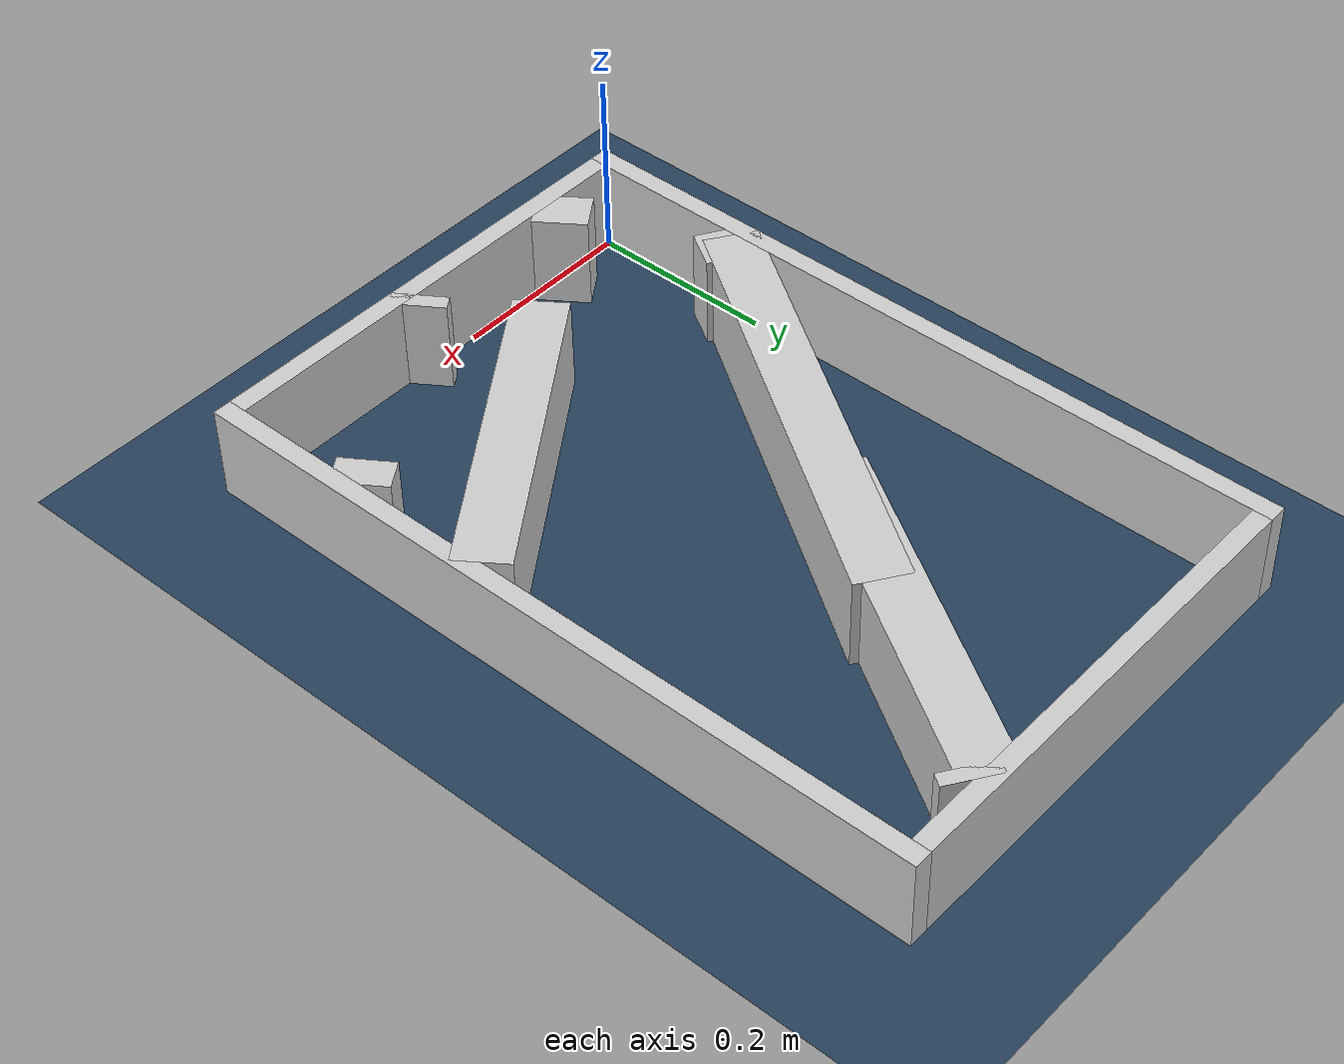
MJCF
<?xml version="1.0" ?>
<mujoco model="generated_real_template">
  <compiler angle="degree"/>
  <option timestep="0.002" integrator="implicitfast" iterations="100" cone="elliptic"/>
  <default>
    <geom density="1"/>
  </default>
  <asset>
    <texture builtin="gradient" height="3072" rgb1="0.3 0.5 0.7" rgb2="0 0 0" type="skybox" width="512"/>
    <texture builtin="checker" height="300" mark="edge" markrgb="0.8 0.8 0.8" name="groundplane" rgb1="0.2 0.3 0.4" rgb2="0.1 0.2 0.3" type="2d" width="300"/>
    <material name="groundplane" reflectance="0.2" texrepeat="5 5" texture="groundplane" texuniform="true"/>
  </asset>
  <worldbody>
    <light dir="0 0 -1" directional="true" pos="0 0 1.5"/>
    <geom name="floor" type="plane" condim="4" friction="0.5 0.005 0.001" material="groundplane" size="0 0 0.05"/>
    <body name="walls">
      <geom name="wall_boundary_left" type="box" condim="4" friction="1.0 0.005 0.0001" rgba="0.8 0.8 0.8 1" pos="-0.010000 0.387500 0.050000" euler="0 0 0.000000" size="0.010000 0.407500 0.050000"/>
      <geom name="wall_boundary_right" type="box" condim="4" friction="1.0 0.005 0.0001" rgba="0.8 0.8 0.8 1" pos="0.500000 0.387500 0.050000" euler="0 0 0.000000" size="0.010000 0.407500 0.050000"/>
      <geom name="wall_boundary_bottom" type="box" condim="4" friction="1.0 0.005 0.0001" rgba="0.8 0.8 0.8 1" pos="0.245000 -0.010000 0.050000" euler="0 0 0.000000" size="0.245000 0.010000 0.050000"/>
      <geom name="wall_boundary_top" type="box" condim="4" friction="1.0 0.005 0.0001" rgba="0.8 0.8 0.8 1" pos="0.245000 0.785000 0.050000" euler="0 0 0.000000" size="0.245000 0.010000 0.050000"/>
      <geom name="wall_inner_1_1" type="box" condim="4" friction="1.0 0.005 0.0001" rgba="0.8 0.8 0.8 1" pos="0.274091 0.008253 0.050000" euler="0 0 33.553107" size="0.008143 0.028500 0.050000"/>
      <geom name="wall_inner_1_2" type="box" condim="4" friction="1.0 0.005 0.0001" rgba="0.8 0.8 0.8 1" pos="0.476330 0.142382 0.050000" euler="0 0 33.553107" size="0.016403 0.028500 0.050000"/>
      <geom name="wall_inner_2_1" type="box" condim="4" friction="1.0 0.005 0.0001" rgba="0.8 0.8 0.8 1" pos="0.405811 0.768902 0.050000" euler="0 0 -123.873890" size="0.007345 0.028500 0.050000"/>
      <geom name="wall_inner_2_2" type="box" condim="4" friction="1.0 0.005 0.0001" rgba="0.8 0.8 0.8 1" pos="0.141337 0.374935 0.050000" euler="0 0 -123.873890" size="0.247007 0.028500 0.050000"/>
      <geom name="wall_inner_3_1" type="box" condim="4" friction="1.0 0.005 0.0001" rgba="0.8 0.8 0.8 1" pos="0.016250 0.176867 0.050000" euler="0 0 57.948658" size="0.022788 0.028500 0.050000"/>
      <geom name="wall_inner_3_2" type="box" condim="4" friction="1.0 0.005 0.0001" rgba="0.8 0.8 0.8 1" pos="0.291325 0.616203 0.050000" euler="0 0 57.948658" size="0.187355 0.028500 0.050000"/>
      <geom name="wall_inner_4_1" type="box" condim="4" friction="1.0 0.005 0.0001" rgba="0.8 0.8 0.8 1" pos="0.344396 0.200293 0.050000" euler="0 0 -144.948751" size="0.177861 0.028500 0.050000"/>
      <geom name="wall_inner_4_2" type="box" condim="4" friction="1.0 0.005 0.0001" rgba="0.8 0.8 0.8 1" pos="0.081429 0.015810 0.050000" euler="0 0 -144.948751" size="0.021727 0.028500 0.050000"/>
    </body>
  </worldbody>
</mujoco>
